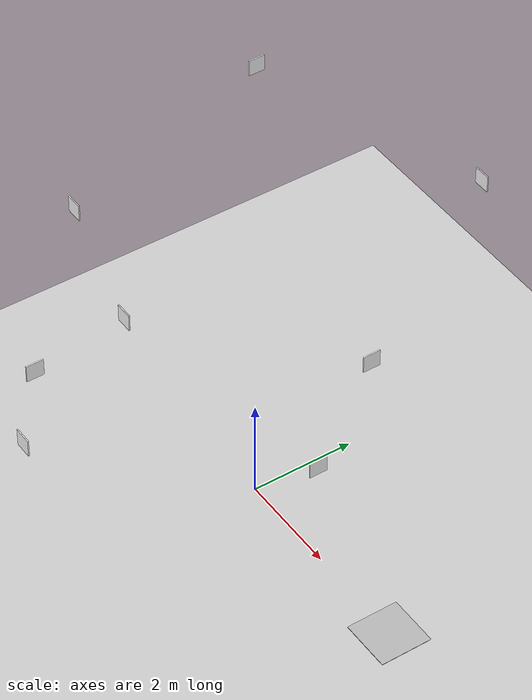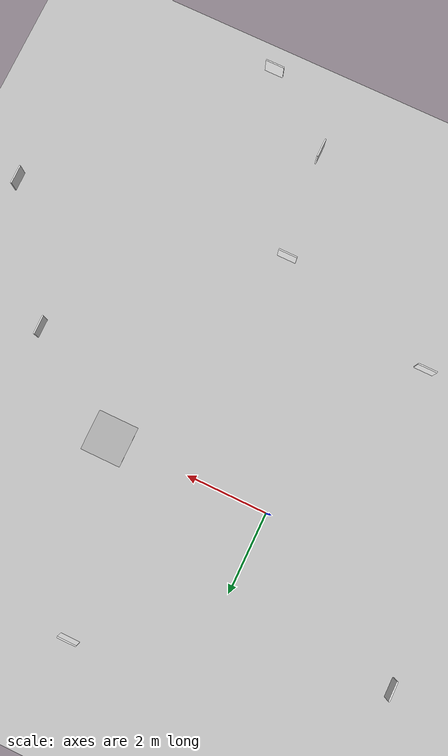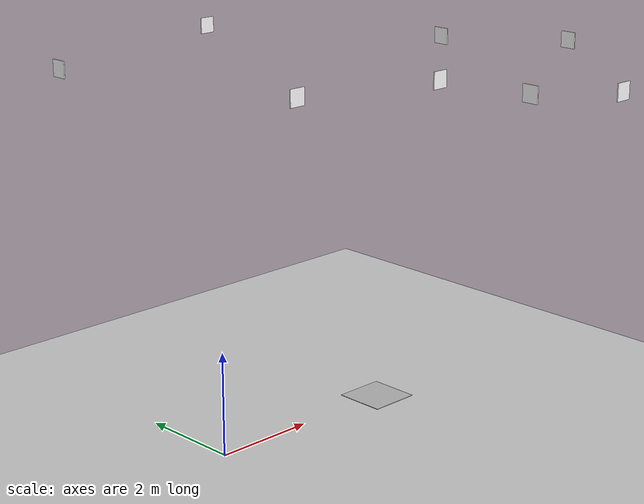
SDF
<sdf version="1.6">
 <world name="default">
  <include><uri>model://ground_plane</uri></include>
  <include><uri>model://sun</uri></include>
  <include><uri>model://tag_land</uri><pose>4 0 0 0 0 0</pose></include>
  <include><uri>model://posAprilTags</uri></include>
 </world>
</sdf>

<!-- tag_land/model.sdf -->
<sdf version='1.6'>
  <model name='tag_takeoff'>
    <link name='link_1'>
      <pose frame=''>0 0 0 0 -0 0</pose>
      <inertial>
        <mass>1</mass>
        <inertia>
          <ixx>0.166667</ixx>
          <ixy>0</ixy>
          <ixz>0</ixz>
          <iyy>0.166667</iyy>
          <iyz>0</iyz>
          <izz>0.166667</izz>
        </inertia>
        <pose frame=''>0 0 0 0 -0 0</pose>
      </inertial>
      <gravity>1</gravity>
      <self_collide>0</self_collide>
      <kinematic>0</kinematic>
      <visual name='visual'>
        <pose frame=''>0 0 0 0 -0 0</pose>
        <geometry>
          <box>
            <size>1 1 0.01</size>
          </box>
        </geometry>
        <material>
          <script>
            <uri>file://tags_material/scripts/tags.material</uri>
            <name>Tag_takeoff</name>
          </script>
        </material>
        <transparency>0</transparency>
        <cast_shadows>1</cast_shadows>
      </visual>
      <collision name='collision'>
        <laser_retro>0</laser_retro>
        <max_contacts>10</max_contacts>
        <pose frame=''>0 0 0 0 -0 0</pose>
        <geometry>
          <box>
            <size>1 1 0.01</size>
          </box>
        </geometry>
        <surface>
          <friction>
            <ode>
              <mu>1</mu>
              <mu2>1</mu2>
              <fdir1>0 0 0</fdir1>
              <slip1>0</slip1>
              <slip2>0</slip2>
            </ode>
            <torsional>
              <coefficient>1</coefficient>
              <patch_radius>0</patch_radius>
              <surface_radius>0</surface_radius>
              <use_patch_radius>1</use_patch_radius>
              <ode>
                <slip>0</slip>
              </ode>
            </torsional>
          </friction>
          <bounce>
            <restitution_coefficient>0</restitution_coefficient>
            <threshold>1e+06</threshold>
          </bounce>
          <contact>
            <collide_without_contact>0</collide_without_contact>
            <collide_without_contact_bitmask>1</collide_without_contact_bitmask>
            <collide_bitmask>1</collide_bitmask>
            <ode>
              <soft_cfm>0</soft_cfm>
              <soft_erp>0.2</soft_erp>
              <kp>1e+13</kp>
              <kd>1</kd>
              <max_vel>0.01</max_vel>
              <min_depth>0</min_depth>
            </ode>
            <bullet>
              <split_impulse>1</split_impulse>
              <split_impulse_penetration_threshold>-0.01</split_impulse_penetration_threshold>
              <soft_cfm>0</soft_cfm>
              <soft_erp>0.2</soft_erp>
              <kp>1e+13</kp>
              <kd>1</kd>
            </bullet>
          </contact>
        </surface>
      </collision>
    </link>
    <static>0</static>
    <allow_auto_disable>1</allow_auto_disable>
  </model>
</sdf>

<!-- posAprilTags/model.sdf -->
<sdf version="1.9">
  <model name="posAprilTags">

    <!-- fridge -->
    <model name="tag_0">
      <pose>1.75 -3.535 7.3 1.57079 1.57079 0</pose>
      <static>true</static>
      <link name="link">
        <visual name="visual">
          <geometry>
            <box>
              <size>0.3 0.3 0.02</size>
            </box>
          </geometry>
          <material>
            <diffuse>1 1 1 1</diffuse>
            <specular>0.4 0.4 0.4 1</specular>
            <pbr>
              <metal>
                <albedo_map>materials/textures/tag36_11_00000.png</albedo_map>
                <double_sided>true</double_sided>
              </metal>
            </pbr>
          </material>
        </visual>
      </link>
    </model>

    <!-- back glass door -->
    <model name="tag_1">
      <pose>2.2 2.835 7.3 1.57079 1.57079 0</pose>
      <static>true</static>
      <link name="link">
        <visual name="visual">
          <geometry>
            <box>
              <size>0.3 0.3 0.02</size>
            </box>
          </geometry>
          <material>
            <diffuse>1 1 1 1</diffuse>
            <specular>0.4 0.4 0.4 1</specular>
            <pbr>
              <metal>
                <albedo_map>materials/textures/tag36_11_00001.png</albedo_map>
                <double_sided>true</double_sided>
              </metal>
            </pbr>
          </material>
        </visual>
      </link>
    </model>

    <!-- window -->
    <model name="tag_2">
      <pose>5.935 -2.89 7.3 0 1.57079 0</pose>
      <static>true</static>
      <link name="link">
        <visual name="visual">
          <geometry>
            <box>
              <size>0.3 0.3 0.02</size>
            </box>
          </geometry>
          <material>
            <diffuse>1 1 1 1</diffuse>
            <specular>0.4 0.4 0.4 1</specular>
            <pbr>
              <metal>
                <albedo_map>materials/textures/tag36_11_00002.png</albedo_map>
                <double_sided>true</double_sided>
              </metal>
            </pbr>
          </material>
        </visual>
      </link>
    </model>

    <!-- kitchen -->
    <model name="tag_3">
      <pose>3.17 -6.14 7.3 1.57079 1.57079 0</pose>
      <static>true</static>
      <link name="link">
        <visual name="visual">
          <geometry>
            <box>
              <size>0.3 0.3 0.02</size>
            </box>
          </geometry>
          <material>
            <diffuse>1 1 1 1</diffuse>
            <specular>0.4 0.4 0.4 1</specular>
            <pbr>
              <metal>
                <albedo_map>materials/textures/tag36_11_00003.png</albedo_map>
                <double_sided>true</double_sided>
              </metal>
            </pbr>
          </material>
        </visual>
      </link>
    </model>

    <!-- back door -->
    <model name="tag_4">
      <pose>-2.18 1.5 7.3 0 1.57079 0</pose>
      <static>true</static>
      <link name="link">
        <visual name="visual">
          <geometry>
            <box>
              <size>0.3 0.3 0.02</size>
            </box>
          </geometry>
          <material>
            <diffuse>1 1 1 1</diffuse>
            <specular>0.4 0.4 0.4 1</specular>
            <pbr>
              <metal>
                <albedo_map>materials/textures/tag36_11_00004.png</albedo_map>
                <double_sided>true</double_sided>
              </metal>
            </pbr>
          </material>
        </visual>
      </link>
    </model>

    <!-- piano -->
    <model name="tag_5">
      <pose>4.59 -1 7.3 0 1.57079 0</pose>
      <static>true</static>
      <link name="link">
        <visual name="visual">
          <geometry>
            <box>
              <size>0.3 0.3 0.02</size>
            </box>
          </geometry>
          <material>
            <diffuse>1 1 1 1</diffuse>
            <specular>0.4 0.4 0.4 1</specular>
            <pbr>
              <metal>
                <albedo_map>materials/textures/tag36_11_00005.png</albedo_map>
                <double_sided>true</double_sided>
              </metal>
            </pbr>
          </material>
        </visual>
      </link>
    </model>

    <!-- front door -->
    <model name="tag_6">
      <pose>-0.8 -2.85 7.3 1.57079 1.57079 0</pose>
      <static>true</static>
      <link name="link">
        <visual name="visual">
          <geometry>
            <box>
              <size>0.3 0.3 0.02</size>
            </box>
          </geometry>
          <material>
            <diffuse>1 1 1 1</diffuse>
            <specular>0.4 0.4 0.4 1</specular>
            <pbr>
              <metal>
                <albedo_map>materials/textures/tag36_11_00006.png</albedo_map>
                <double_sided>true</double_sided>
              </metal>
            </pbr>
          </material>
        </visual>
      </link>
    </model>

    <model name="tag_7">
      <pose>1.98 -5.23 7.3 0 1.57079 0</pose>
      <static>true</static>
      <link name="link">
        <visual name="visual">
          <geometry>
            <box>
              <size>0.3 0.3 0.02</size>
            </box>
          </geometry>
          <material>
            <diffuse>1 1 1 1</diffuse>
            <specular>0.4 0.4 0.4 1</specular>
            <pbr>
              <metal>
                <albedo_map>materials/textures/tag36_11_00007.png</albedo_map>
                <double_sided>true</double_sided>
              </metal>
            </pbr>
          </material>
        </visual>
      </link>
    </model>

  </model>
</sdf>
